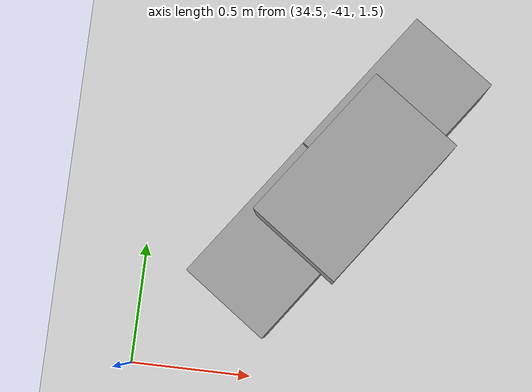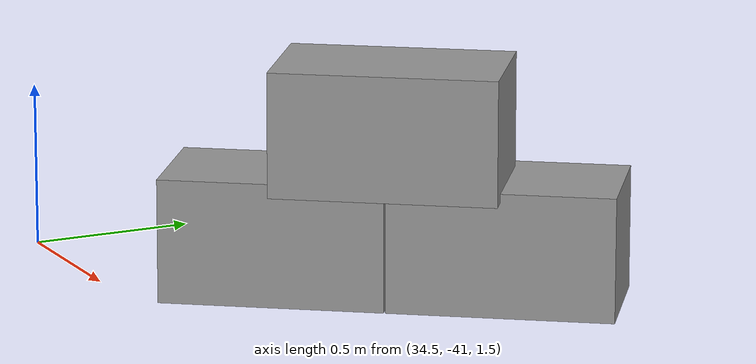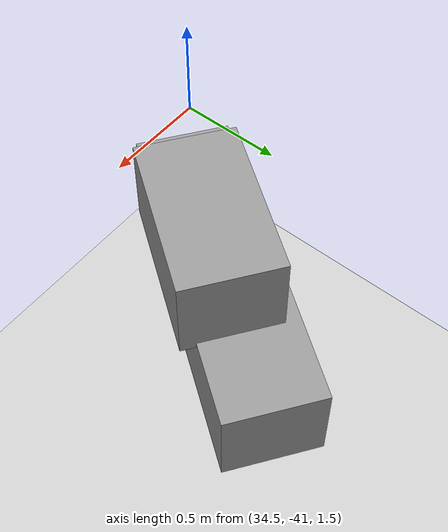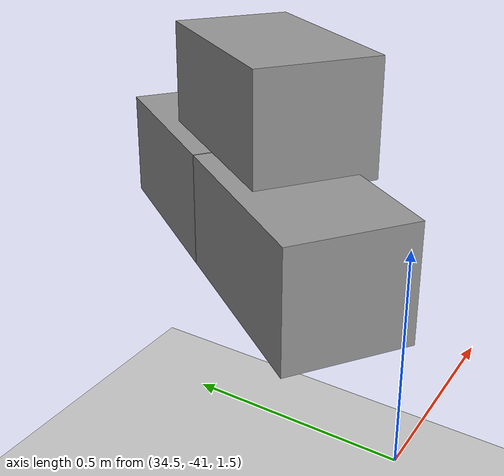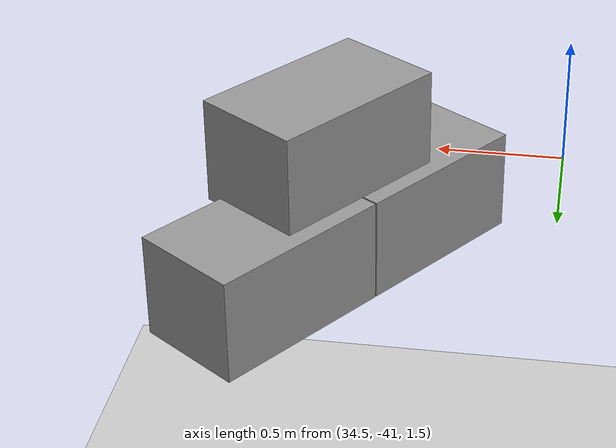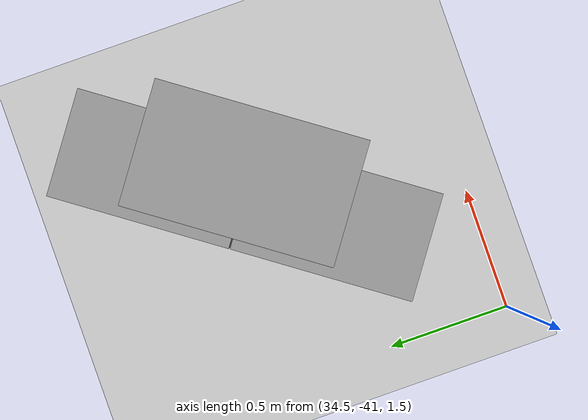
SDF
<sdf version="1.7">
 <world name="default">
  <model name="ground_plane">
   <static>1</static>
   <link name="link">
    <collision name="collision">
     <geometry><plane><normal>0 0 1</normal><size>100 100</size></plane></geometry>
     <surface>
      <contact><collide_bitmask>65535</collide_bitmask></contact>
      <friction><ode><mu>100</mu><mu2>50</mu2></ode></friction>
     </surface>
    </collision>
    <visual name="visual">
     <cast_shadows>0</cast_shadows>
     <geometry><plane><normal>0 0 1</normal><size>100 100</size></plane></geometry>
     <material>
      <script><uri>file://media/materials/scripts/gazebo.material</uri><name>Gazebo/Grey</name></script>
     </material>
    </visual>
   </link>
  </model>
  <model name="Add_Box_clone_clone_1">
   <link name="link">
    <inertial>
     <mass>1</mass>
     <inertia>
      <ixx>0.166667</ixx>
      <ixy>0</ixy>
      <ixz>0</ixz>
      <iyy>0.166667</iyy>
      <iyz>0</iyz>
      <izz>0.166667</izz>
     </inertia>
    </inertial>
    <kinematic>1</kinematic>
    <gravity>0</gravity>
    <visual name="visual">
     <geometry><box><size>0.686 0.406 0.381</size></box></geometry>
     <material>
      <script><name>Gazebo/Grey</name><uri>file://media/materials/scripts/gazebo.material</uri></script>
      <shader type="pixel"><normal_map>__default__</normal_map></shader>
      <ambient>0.3 0.3 0.3 1</ambient>
      <diffuse>0.7 0.7 0.7 1</diffuse>
      <specular>0.01 0.01 0.01 1</specular>
      <emissive>0 0 0 1</emissive>
     </material>
    </visual>
    <collision name="collision">
     <geometry><box><size>1 1 1</size></box></geometry>
     <surface>
      <friction>
       <ode><mu>1</mu><mu2>1</mu2><fdir1>0 0 0</fdir1><slip1>0</slip1><slip2>0</slip2></ode>
       <torsional>
        <coefficient>1</coefficient>
        <patch_radius>0</patch_radius>
        <surface_radius>0</surface_radius>
        <use_patch_radius>1</use_patch_radius>
        <ode><slip>0</slip></ode>
       </torsional>
      </friction>
      <bounce><restitution_coefficient>0</restitution_coefficient><threshold>1e+06</threshold></bounce>
      <contact>
       <collide_without_contact>0</collide_without_contact>
       <collide_without_contact_bitmask>1</collide_without_contact_bitmask>
       <collide_bitmask>1</collide_bitmask>
       <ode>
        <soft_cfm>0</soft_cfm>
        <soft_erp>0.2</soft_erp>
        <kp>1e+13</kp>
        <kd>1</kd>
        <max_vel>0.01</max_vel>
        <min_depth>0</min_depth>
       </ode>
       <bullet>
        <split_impulse>1</split_impulse>
        <split_impulse_penetration_threshold>-0.01</split_impulse_penetration_threshold>
        <soft_cfm>0</soft_cfm>
        <soft_erp>0.2</soft_erp>
        <kp>1e+13</kp>
        <kd>1</kd>
       </bullet>
      </contact>
     </surface>
    </collision>
   </link>
   <link name="link_clone">
    <inertial>
     <mass>1</mass>
     <inertia>
      <ixx>0.166667</ixx>
      <ixy>0</ixy>
      <ixz>0</ixz>
      <iyy>0.166667</iyy>
      <iyz>0</iyz>
      <izz>0.166667</izz>
     </inertia>
    </inertial>
    <pose>-0.343354 -0.063316 0.354303 1e-05 -0 0</pose>
    <gravity>0</gravity>
    <visual name="visual">
     <geometry><box><size>0.686 0.406 0.381</size></box></geometry>
     <material>
      <script><name>Gazebo/Grey</name><uri>file://media/materials/scripts/gazebo.material</uri></script>
      <shader type="pixel"><normal_map>__default__</normal_map></shader>
      <ambient>0.3 0.3 0.3 1</ambient>
      <diffuse>0.7 0.7 0.7 1</diffuse>
      <specular>0.01 0.01 0.01 1</specular>
      <emissive>0 0 0 1</emissive>
     </material>
    </visual>
    <collision name="collision">
     <geometry><box><size>1 1 1</size></box></geometry>
     <surface>
      <friction>
       <ode><mu>1</mu><mu2>1</mu2><fdir1>0 0 0</fdir1><slip1>0</slip1><slip2>0</slip2></ode>
       <torsional>
        <coefficient>1</coefficient>
        <patch_radius>0</patch_radius>
        <surface_radius>0</surface_radius>
        <use_patch_radius>1</use_patch_radius>
        <ode><slip>0</slip></ode>
       </torsional>
      </friction>
      <bounce><restitution_coefficient>0</restitution_coefficient><threshold>1e+06</threshold></bounce>
      <contact>
       <collide_without_contact>0</collide_without_contact>
       <collide_without_contact_bitmask>1</collide_without_contact_bitmask>
       <collide_bitmask>1</collide_bitmask>
       <ode>
        <soft_cfm>0</soft_cfm>
        <soft_erp>0.2</soft_erp>
        <kp>1e+13</kp>
        <kd>1</kd>
        <max_vel>0.01</max_vel>
        <min_depth>0</min_depth>
       </ode>
       <bullet>
        <split_impulse>1</split_impulse>
        <split_impulse_penetration_threshold>-0.01</split_impulse_penetration_threshold>
        <soft_cfm>0</soft_cfm>
        <soft_erp>0.2</soft_erp>
        <kp>1e+13</kp>
        <kd>1</kd>
       </bullet>
      </contact>
     </surface>
    </collision>
   </link>
   <link name="link_clone_clone">
    <inertial>
     <mass>1</mass>
     <inertia>
      <ixx>0.166667</ixx>
      <ixy>0</ixy>
      <ixz>0</ixz>
      <iyy>0.166667</iyy>
      <iyz>0</iyz>
      <izz>0.166667</izz>
     </inertia>
    </inertial>
    <pose>-0.690786 -0.000183 -1e-05 2e-05 -0 0</pose>
    <gravity>0</gravity>
    <visual name="visual">
     <geometry><box><size>0.686 0.406 0.381</size></box></geometry>
     <material>
      <script><name>Gazebo/Grey</name><uri>file://media/materials/scripts/gazebo.material</uri></script>
      <shader type="pixel"><normal_map>__default__</normal_map></shader>
      <ambient>0.3 0.3 0.3 1</ambient>
      <diffuse>0.7 0.7 0.7 1</diffuse>
      <specular>0.01 0.01 0.01 1</specular>
      <emissive>0 0 0 1</emissive>
     </material>
    </visual>
    <collision name="collision">
     <geometry><box><size>1 1 1</size></box></geometry>
     <surface>
      <friction>
       <ode><mu>1</mu><mu2>1</mu2><fdir1>0 0 0</fdir1><slip1>0</slip1><slip2>0</slip2></ode>
       <torsional>
        <coefficient>1</coefficient>
        <patch_radius>0</patch_radius>
        <surface_radius>0</surface_radius>
        <use_patch_radius>1</use_patch_radius>
        <ode><slip>0</slip></ode>
       </torsional>
      </friction>
      <bounce><restitution_coefficient>0</restitution_coefficient><threshold>1e+06</threshold></bounce>
      <contact>
       <collide_without_contact>0</collide_without_contact>
       <collide_without_contact_bitmask>1</collide_without_contact_bitmask>
       <collide_bitmask>1</collide_bitmask>
       <ode>
        <soft_cfm>0</soft_cfm>
        <soft_erp>0.2</soft_erp>
        <kp>1e+13</kp>
        <kd>1</kd>
        <max_vel>0.01</max_vel>
        <min_depth>0</min_depth>
       </ode>
       <bullet>
        <split_impulse>1</split_impulse>
        <split_impulse_penetration_threshold>-0.01</split_impulse_penetration_threshold>
        <soft_cfm>0</soft_cfm>
        <soft_erp>0.2</soft_erp>
        <kp>1e+13</kp>
        <kd>1</kd>
       </bullet>
      </contact>
     </surface>
    </collision>
   </link>
   <static>0</static>
   <pose>35.4762 -39.8725 1.61518 0 -0 0.950497</pose>
  </model>
 </world>
</sdf>
